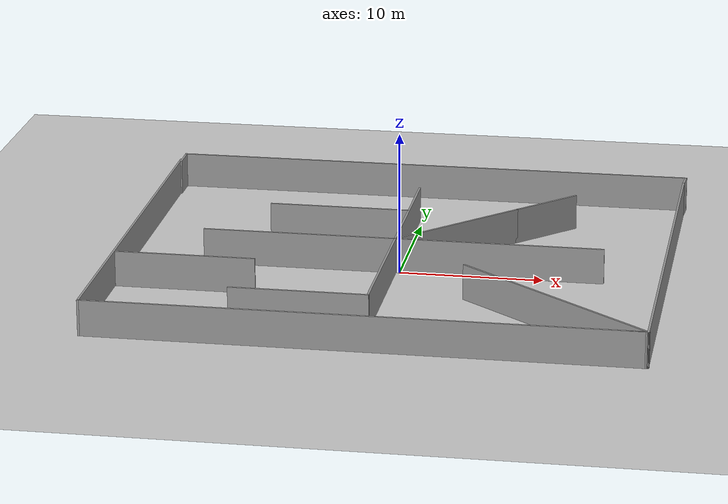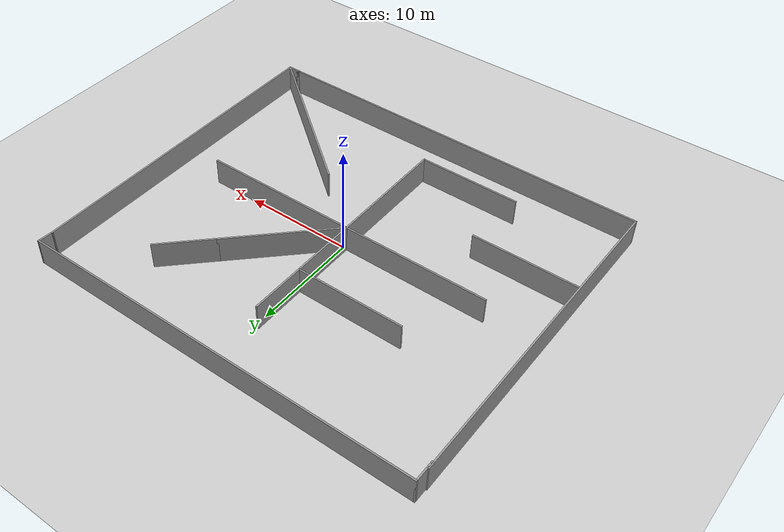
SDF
<sdf version="1.6">
 <world name="default">
  <light name="sun" type="directional">
   <pose>0 0 10 0 -0 0</pose>
   <diffuse>0.8 0.8 0.8 1</diffuse>
   <specular>0.2 0.2 0.2 1</specular>
   <attenuation>
    <range>1000</range>
    <constant>0.9</constant>
    <linear>0.01</linear>
    <quadratic>0.001</quadratic>
   </attenuation>
   <direction>-0.5 0.1 -0.9</direction>
  </light>
  <model name="ground_plane">
   <static>1</static>
   <link name="link">
    <collision name="collision">
     <geometry><plane><normal>0 0 1</normal><size>100 100</size></plane></geometry>
     <surface>
      <contact><collide_bitmask>65535</collide_bitmask></contact>
      <friction><ode><mu>100</mu><mu2>50</mu2></ode></friction>
     </surface>
    </collision>
    <visual name="visual">
     <cast_shadows>0</cast_shadows>
     <geometry><plane><normal>0 0 1</normal><size>100 100</size></plane></geometry>
     <material>
      <script><uri>file://media/materials/scripts/gazebo.material</uri><name>Gazebo/Grey</name></script>
     </material>
    </visual>
   </link>
  </model>
  <gravity>0 0 -9.8</gravity>
  <magnetic_field>6e-06 2.3e-05 -4.2e-05</magnetic_field>
  <atmosphere type="adiabatic"/>
  <physics name="default_physics" default="0" type="ode">
   <max_step_size>0.001</max_step_size>
   <real_time_factor>1</real_time_factor>
   <real_time_update_rate>1000</real_time_update_rate>
  </physics>
  <scene><ambient>0.4 0.4 0.4 1</ambient><background>0.7 0.7 0.7 1</background><shadows>1</shadows></scene>
  <audio><device>default</device></audio>
  <spherical_coordinates>
   <surface_model>EARTH_WGS84</surface_model>
   <latitude_deg>0</latitude_deg>
   <longitude_deg>0</longitude_deg>
   <elevation>0</elevation>
   <heading_deg>0</heading_deg>
  </spherical_coordinates>
  <model name="LVL_TREE">
   <pose>-0.175214 0.641189 0 0 -0 0</pose>
   <link name="Wall_11">
    <collision name="Wall_11_Collision">
     <geometry><box><size>10 0.15 2.5</size></box></geometry>
     <pose>0 0 1.25 0 -0 0</pose>
    </collision>
    <visual name="Wall_11_Visual">
     <pose>0 0 1.25 0 -0 0</pose>
     <geometry><box><size>10 0.15 2.5</size></box></geometry>
     <material>
      <script><uri>file://media/materials/scripts/gazebo.material</uri><name>Gazebo/Grey</name></script>
      <ambient>1 1 1 1</ambient>
     </material>
     <meta><layer>0</layer></meta>
    </visual>
    <pose>-5.11754 5.5282 0 0 -0 3.14159</pose>
   </link>
   <link name="Wall_13">
    <collision name="Wall_13_Collision">
     <geometry><box><size>9.5 0.15 2.5</size></box></geometry>
     <pose>0 0 1.25 0 -0 0</pose>
    </collision>
    <visual name="Wall_13_Visual">
     <pose>0 0 1.25 0 -0 0</pose>
     <geometry><box><size>9.5 0.15 2.5</size></box></geometry>
     <material>
      <script><uri>file://media/materials/scripts/gazebo.material</uri><name>Gazebo/Grey</name></script>
      <ambient>1 1 1 1</ambient>
     </material>
     <meta><layer>0</layer></meta>
    </visual>
    <pose>-4.82524 -11.9949 0 0 -0 3.14159</pose>
   </link>
   <link name="Wall_15">
    <collision name="Wall_15_Collision">
     <geometry><box><size>10.75 0.15 2.5</size></box></geometry>
     <pose>0 0 1.25 0 -0 0</pose>
    </collision>
    <visual name="Wall_15_Visual">
     <pose>0 0 1.25 0 -0 0</pose>
     <geometry><box><size>10.75 0.15 2.5</size></box></geometry>
     <material>
      <script><uri>file://media/materials/scripts/gazebo.material</uri><name>Gazebo/Grey</name></script>
      <ambient>1 1 1 1</ambient>
     </material>
     <meta><layer>0</layer></meta>
    </visual>
    <pose>3.61233 3.13944 0 0 -0 0.785398</pose>
   </link>
   <link name="Wall_17">
    <collision name="Wall_17_Collision">
     <geometry><box><size>37.25 0.15 2.5</size></box></geometry>
     <pose>0 0 1.25 0 -0 0</pose>
    </collision>
    <visual name="Wall_17_Visual">
     <pose>0 0 1.25 0 -0 0</pose>
     <geometry><box><size>37.25 0.15 2.5</size></box></geometry>
     <material>
      <script><uri>file://media/materials/scripts/gazebo.material</uri><name>Gazebo/Grey</name></script>
      <ambient>1 1 1 1</ambient>
     </material>
     <meta><layer>0</layer></meta>
    </visual>
    <pose>-0.173549 -15.9442 0 0 -0 0</pose>
   </link>
   <link name="Wall_21">
    <collision name="Wall_21_Collision">
     <geometry><box><size>30.75 0.15 2.5</size></box></geometry>
     <pose>0 0 1.25 0 -0 0</pose>
    </collision>
    <visual name="Wall_21_Visual">
     <pose>0 0 1.25 0 -0 0</pose>
     <geometry><box><size>30.75 0.15 2.5</size></box></geometry>
     <material>
      <script><uri>file://media/materials/scripts/gazebo.material</uri><name>Gazebo/Grey</name></script>
      <ambient>1 1 1 1</ambient>
     </material>
     <meta><layer>0</layer></meta>
    </visual>
    <pose>-18.7235 -0.644228 0 0 -0 1.5708</pose>
   </link>
   <link name="Wall_23">
    <collision name="Wall_23_Collision">
     <geometry><box><size>30.75 0.15 2.5</size></box></geometry>
     <pose>0 0 1.25 0 -0 0</pose>
    </collision>
    <visual name="Wall_23_Visual">
     <pose>0 0 1.25 0 -0 0</pose>
     <geometry><box><size>30.75 0.15 2.5</size></box></geometry>
     <material>
      <script><uri>file://media/materials/scripts/gazebo.material</uri><name>Gazebo/Grey</name></script>
      <ambient>1 1 1 1</ambient>
     </material>
     <meta><layer>0</layer></meta>
    </visual>
    <pose>18.6265 -0.644228 0 0 -0 -1.5708</pose>
   </link>
   <link name="Wall_24">
    <collision name="Wall_24_Collision">
     <geometry><box><size>1.25 0.15 2.5</size></box></geometry>
     <pose>0 0 1.25 0 -0 0</pose>
    </collision>
    <visual name="Wall_24_Visual">
     <pose>0 0 1.25 0 -0 0</pose>
     <geometry><box><size>1.25 0.15 2.5</size></box></geometry>
     <material>
      <script><uri>file://media/materials/scripts/gazebo.material</uri><name>Gazebo/Grey</name></script>
      <ambient>1 1 1 1</ambient>
     </material>
     <meta><layer>0</layer></meta>
    </visual>
    <pose>18.0765 -15.9442 0 0 -0 3.14159</pose>
   </link>
   <link name="Wall_27">
    <collision name="Wall_27_Collision">
     <geometry><box><size>17.2555 0.15 2.5</size></box></geometry>
     <pose>0 0 1.25 0 -0 0</pose>
    </collision>
    <visual name="Wall_27_Visual">
     <pose>0 0 1.25 0 -0 0</pose>
     <geometry><box><size>17.2555 0.15 2.5</size></box></geometry>
     <material>
      <script><uri>file://media/materials/scripts/gazebo.material</uri><name>Gazebo/Grey</name></script>
      <ambient>1 1 1 1</ambient>
     </material>
     <meta><layer>0</layer></meta>
    </visual>
    <pose>11.9719 -10.5714 0 0 -0 -0.679232</pose>
   </link>
   <link name="Wall_29">
    <collision name="Wall_29_Collision">
     <geometry><box><size>9.75 0.15 2.5</size></box></geometry>
     <pose>0 0 1.25 0 -0 0</pose>
    </collision>
    <visual name="Wall_29_Visual">
     <pose>0 0 1.25 0 -0 0</pose>
     <geometry><box><size>9.75 0.15 2.5</size></box></geometry>
     <material>
      <script><uri>file://media/materials/scripts/gazebo.material</uri><name>Gazebo/Grey</name></script>
      <ambient>1 1 1 1</ambient>
     </material>
     <meta><layer>0</layer></meta>
    </visual>
    <pose>-13.7585 -6.22699 0 0 -0 3.14159</pose>
   </link>
   <link name="Wall_31">
    <collision name="Wall_31_Collision">
     <geometry><box><size>5.5 0.15 2.5</size></box></geometry>
     <pose>0 0 1.25 0 -0 0</pose>
    </collision>
    <visual name="Wall_31_Visual">
     <pose>0 0 1.25 0 -0 0</pose>
     <geometry><box><size>5.5 0.15 2.5</size></box></geometry>
     <material>
      <script><uri>file://media/materials/scripts/gazebo.material</uri><name>Gazebo/Grey</name></script>
      <ambient>1 1 1 1</ambient>
     </material>
     <meta><layer>0</layer></meta>
    </visual>
    <pose>9.25151 8.77862 0 0 -0 0.785398</pose>
   </link>
   <link name="Wall_36">
    <collision name="Wall_36_Collision">
     <geometry><box><size>37.5 0.15 2.5</size></box></geometry>
     <pose>0 0 1.25 0 -0 0</pose>
    </collision>
    <visual name="Wall_36_Visual">
     <pose>0 0 1.25 0 -0 0</pose>
     <geometry><box><size>37.5 0.15 2.5</size></box></geometry>
     <material>
      <script><uri>file://media/materials/scripts/gazebo.material</uri><name>Gazebo/Grey</name></script>
      <ambient>1 1 1 1</ambient>
     </material>
     <meta><layer>0</layer></meta>
    </visual>
    <pose>0.043493 15.9696 0 0 -0 0</pose>
   </link>
   <link name="Wall_37">
    <collision name="Wall_37_Collision">
     <geometry><box><size>1.46709 0.15 2.5</size></box></geometry>
     <pose>0 0 1.25 0 -0 0</pose>
    </collision>
    <visual name="Wall_37_Visual">
     <pose>0 0 1.25 0 -0 0</pose>
     <geometry><box><size>1.46709 0.15 2.5</size></box></geometry>
     <material>
      <script><uri>file://media/materials/scripts/gazebo.material</uri><name>Gazebo/Grey</name></script>
      <ambient>1 1 1 1</ambient>
     </material>
     <meta><layer>0</layer></meta>
    </visual>
    <pose>18.6725 15.3127 0 0 -0 -1.64074</pose>
   </link>
   <link name="Wall_39">
    <collision name="Wall_39_Collision">
     <geometry><box><size>2 0.15 2.5</size></box></geometry>
     <pose>0 0 1.25 0 -0 0</pose>
    </collision>
    <visual name="Wall_39_Visual">
     <pose>0 0 1.25 0 -0 0</pose>
     <geometry><box><size>2 0.15 2.5</size></box></geometry>
     <material>
      <script><uri>file://media/materials/scripts/gazebo.material</uri><name>Gazebo/Grey</name></script>
      <ambient>1 1 1 1</ambient>
     </material>
     <meta><layer>0</layer></meta>
    </visual>
    <pose>-18.6315 15.0446 0 0 -0 -1.5708</pose>
   </link>
   <link name="Wall_7">
    <collision name="Wall_7_Collision">
     <geometry><box><size>28 0.15 2.5</size></box></geometry>
     <pose>0 0 1.25 0 -0 0</pose>
    </collision>
    <visual name="Wall_7_Visual">
     <pose>0 0 1.25 0 -0 0</pose>
     <geometry><box><size>28 0.15 2.5</size></box></geometry>
     <material>
      <script><uri>file://media/materials/scripts/gazebo.material</uri><name>Gazebo/Grey</name></script>
      <ambient>1 1 1 1</ambient>
     </material>
     <meta><layer>0</layer></meta>
    </visual>
    <pose>0.343511 -0.641551 0 0 -0 0</pose>
   </link>
   <link name="Wall_9">
    <collision name="Wall_9_Collision">
     <geometry><box><size>22.75 0.15 2.5</size></box></geometry>
     <pose>0 0 1.25 0 -0 0</pose>
    </collision>
    <visual name="Wall_9_Visual">
     <pose>0 0 1.25 0 -0 0</pose>
     <geometry><box><size>22.75 0.15 2.5</size></box></geometry>
     <material>
      <script><uri>file://media/materials/scripts/gazebo.material</uri><name>Gazebo/Grey</name></script>
      <ambient>1 1 1 1</ambient>
     </material>
     <meta><layer>0</layer></meta>
    </visual>
    <pose>-0.150237 -0.694901 0 0 -0 -1.5708</pose>
   </link>
   <static>1</static>
  </model>
 </world>
</sdf>
